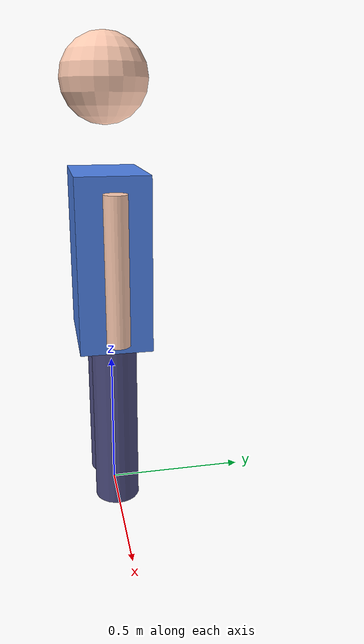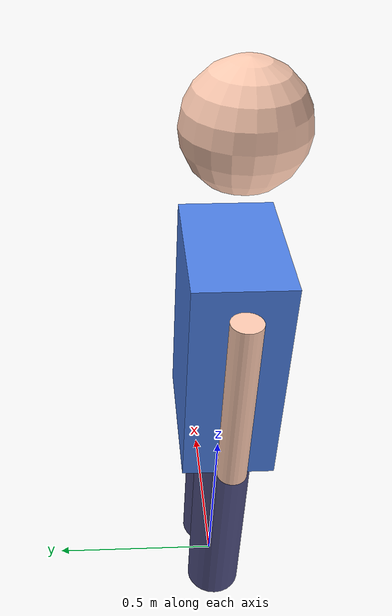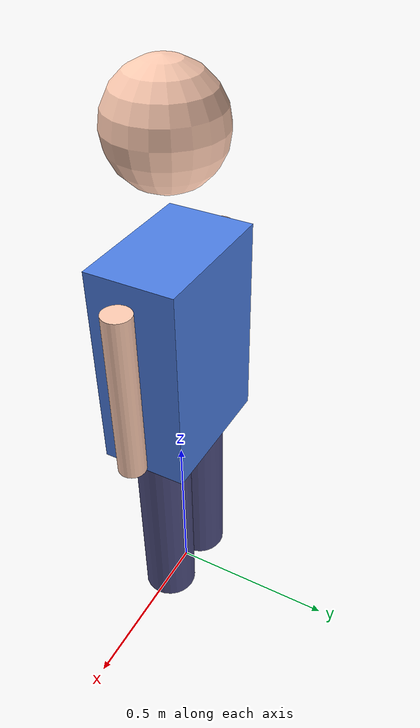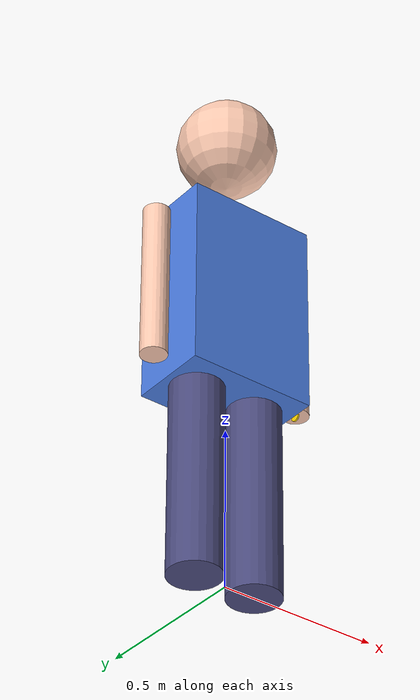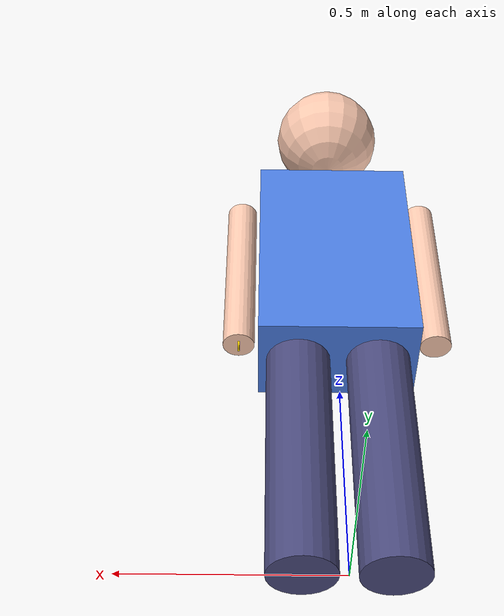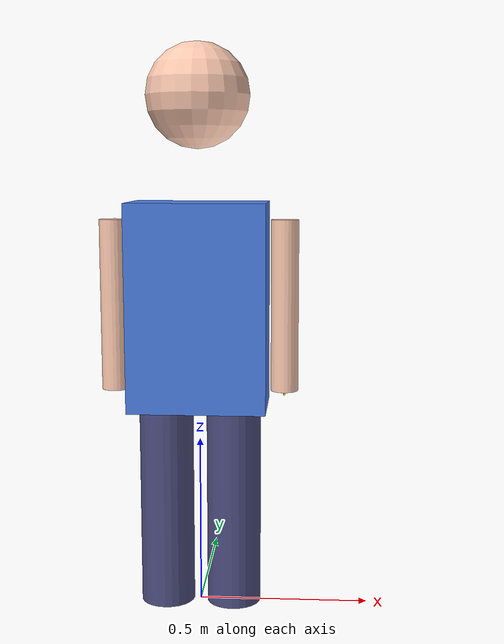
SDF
<?xml version="1.0" ?>
<sdf version="1.6">
  <model name="person_with_ring">
    <!-- Base/Torso -->
    <link name="torso">
      <pose>0 0 0.9 0 0 0</pose>
      <inertial>
        <mass>50</mass>
        <inertia>
          <ixx>2.0</ixx>
          <iyy>2.0</iyy>
          <izz>0.5</izz>
        </inertia>
      </inertial>
      <collision name="collision">
        <geometry>
          <box>
            <size>0.4 0.25 0.6</size>
          </box>
        </geometry>
      </collision>
      <visual name="visual">
        <geometry>
          <box>
            <size>0.4 0.25 0.6</size>
          </box>
        </geometry>
        <material>
          <ambient>0.2 0.4 0.8 1</ambient>
          <diffuse>0.3 0.5 0.9 1</diffuse>
        </material>
      </visual>
    </link>

    <!-- Head -->
    <link name="head">
      <pose>0 0 1.5 0 0 0</pose>
      <inertial>
        <mass>5</mass>
        <inertia>
          <ixx>0.1</ixx>
          <iyy>0.1</iyy>
          <izz>0.1</izz>
        </inertia>
      </inertial>
      <collision name="collision">
        <geometry>
          <sphere>
            <radius>0.15</radius>
          </sphere>
        </geometry>
      </collision>
      <visual name="visual">
        <geometry>
          <sphere>
            <radius>0.15</radius>
          </sphere>
        </geometry>
        <material>
          <ambient>0.9 0.7 0.6 1</ambient>
          <diffuse>1.0 0.8 0.7 1</diffuse>
        </material>
      </visual>
    </link>

    <!-- Right arm -->
    <link name="right_arm">
      <pose>0.25 0 0.9 0 0 0</pose>
      <inertial>
        <mass>3</mass>
        <inertia>
          <ixx>0.05</ixx>
          <iyy>0.05</iyy>
          <izz>0.01</izz>
        </inertia>
      </inertial>
      <collision name="collision">
        <geometry>
          <cylinder>
            <radius>0.04</radius>
            <length>0.5</length>
          </cylinder>
        </geometry>
      </collision>
      <visual name="visual">
        <geometry>
          <cylinder>
            <radius>0.04</radius>
            <length>0.5</length>
          </cylinder>
        </geometry>
        <material>
          <ambient>0.9 0.7 0.6 1</ambient>
          <diffuse>1.0 0.8 0.7 1</diffuse>
        </material>
      </visual>
    </link>

    <!-- Left arm -->
    <link name="left_arm">
      <pose>-0.25 0 0.9 0 0 0</pose>
      <inertial>
        <mass>3</mass>
        <inertia>
          <ixx>0.05</ixx>
          <iyy>0.05</iyy>
          <izz>0.01</izz>
        </inertia>
      </inertial>
      <collision name="collision">
        <geometry>
          <cylinder>
            <radius>0.04</radius>
            <length>0.5</length>
          </cylinder>
        </geometry>
      </collision>
      <visual name="visual">
        <geometry>
          <cylinder>
            <radius>0.04</radius>
            <length>0.5</length>
          </cylinder>
        </geometry>
        <material>
          <ambient>0.9 0.7 0.6 1</ambient>
          <diffuse>1.0 0.8 0.7 1</diffuse>
        </material>
      </visual>
    </link>

    <!-- Ring on right hand -->
    <link name="ring">
      <pose>0.25 0 0.65 0 1.57 0</pose>
      <inertial>
        <mass>0.01</mass>
        <inertia>
          <ixx>0.0001</ixx>
          <iyy>0.0001</iyy>
          <izz>0.0001</izz>
        </inertia>
      </inertial>
      <visual name="visual">
        <geometry>
          <cylinder>
            <radius>0.015</radius>
            <length>0.005</length>
          </cylinder>
        </geometry>
        <material>
          <ambient>1.0 0.84 0.0 1</ambient>
          <diffuse>1.0 0.84 0.0 1</diffuse>
        </material>
      </visual>
    </link>

    <!-- Right leg -->
    <link name="right_leg">
      <pose>0.1 0 0.3 0 0 0</pose>
      <inertial>
        <mass>8</mass>
        <inertia>
          <ixx>0.2</ixx>
          <iyy>0.2</iyy>
          <izz>0.05</izz>
        </inertia>
      </inertial>
      <collision name="collision">
        <geometry>
          <cylinder>
            <radius>0.08</radius>
            <length>0.6</length>
          </cylinder>
        </geometry>
      </collision>
      <visual name="visual">
        <geometry>
          <cylinder>
            <radius>0.08</radius>
            <length>0.6</length>
          </cylinder>
        </geometry>
        <material>
          <ambient>0.2 0.2 0.4 1</ambient>
          <diffuse>0.3 0.3 0.5 1</diffuse>
        </material>
      </visual>
    </link>

    <!-- Left leg -->
    <link name="left_leg">
      <pose>-0.1 0 0.3 0 0 0</pose>
      <inertial>
        <mass>8</mass>
        <inertia>
          <ixx>0.2</ixx>
          <iyy>0.2</iyy>
          <izz>0.05</izz>
        </inertia>
      </inertial>
      <collision name="collision">
        <geometry>
          <cylinder>
            <radius>0.08</radius>
            <length>0.6</length>
          </cylinder>
        </geometry>
      </collision>
      <visual name="visual">
        <geometry>
          <cylinder>
            <radius>0.08</radius>
            <length>0.6</length>
          </cylinder>
        </geometry>
        <material>
          <ambient>0.2 0.2 0.4 1</ambient>
          <diffuse>0.3 0.3 0.5 1</diffuse>
        </material>
      </visual>
    </link>

    <!-- Joints -->
    <joint name="torso_to_head" type="fixed">
      <parent>torso</parent>
      <child>head</child>
    </joint>

    <joint name="torso_to_right_arm" type="revolute">
      <parent>torso</parent>
      <child>right_arm</child>
      <axis>
        <xyz>0 1 0</xyz>
        <limit>
          <lower>-1.5</lower>
          <upper>1.5</upper>
        </limit>
      </axis>
    </joint>

    <joint name="torso_to_left_arm" type="revolute">
      <parent>torso</parent>
      <child>left_arm</child>
      <axis>
        <xyz>0 1 0</xyz>
        <limit>
          <lower>-1.5</lower>
          <upper>1.5</upper>
        </limit>
      </axis>
    </joint>

    <joint name="right_arm_to_ring" type="fixed">
      <parent>right_arm</parent>
      <child>ring</child>
    </joint>

    <joint name="torso_to_right_leg" type="revolute">
      <parent>torso</parent>
      <child>right_leg</child>
      <axis>
        <xyz>0 1 0</xyz>
        <limit>
          <lower>-0.5</lower>
          <upper>0.5</upper>
        </limit>
      </axis>
    </joint>

    <joint name="torso_to_left_leg" type="revolute">
      <parent>torso</parent>
      <child>left_leg</child>
      <axis>
        <xyz>0 1 0</xyz>
        <limit>
          <lower>-0.5</lower>
          <upper>0.5</upper>
        </limit>
      </axis>
    </joint>

  </model>
</sdf>
